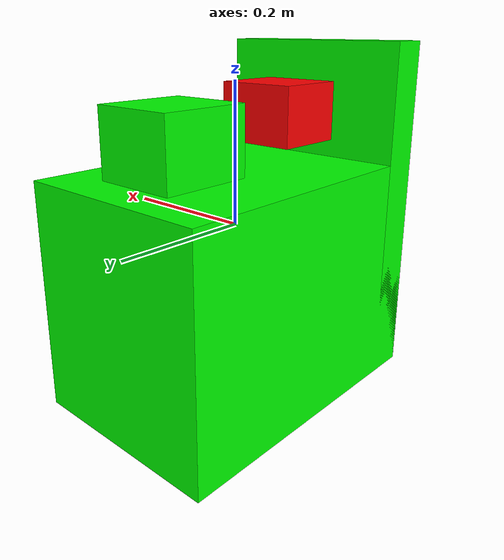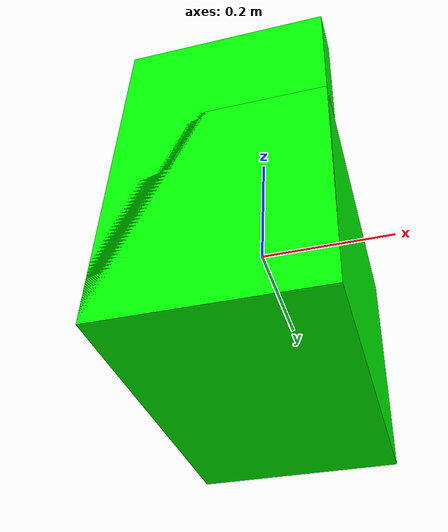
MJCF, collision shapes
<mujoco model="coffee_machine_8">
  <compiler autolimits="true" boundmass="0.01" angle="radian"/>
  <default>
    <default class="/">
      <default class="__VISUAL_MJT__">
        <geom contype="0" conaffinity="0" group="0"/>
      </default>
      <default class="__STRUCTURAL_MJT__">
        <geom contype="8" conaffinity="15" group="4" friction="0.90000000000000002 0.90000000000000002 0.001" solref="0.025000000000000001 1" solimp="0.998 0.998 0.001"/>
      </default>
      <default class="__DYNAMIC_MJT__">
        <geom contype="1" conaffinity="15" group="4" friction="0.90000000000000002 0.90000000000000002 0.001" solref="0.025000000000000001 1" solimp="0.998 0.998 0.001"/>
      </default>
    </default>
  </default>
  <asset>
    <material name="material_coffee_machine_backup_mat" class="/" specular="0.5" shininess="0.5" rgba="0.5 0.5 0.5 1"/>
    <material name="material_Coffee_Machine_Readout_Mat_Off" class="/" specular="0.5" shininess="0.5" rgba="0 0 0 1"/>
    <texture name="Coffee_Machine_Decal_Mat" type="2d" file="Coffee_Machine_Decal_AlbedoTransparency.png"/>
    <material name="material_Coffee_Machine_Decal_Mat" class="/" texture="Coffee_Machine_Decal_Mat" specular="0.5" shininess="0.5" rgba="1 1 1 1"/>
    <texture name="Coffee_Machine_Metal_Mat" type="2d" file="MetalBumpy_AlbedoTransparency.png"/>
    <material name="material_Coffee_Machine_Metal_Mat" class="/" texture="Coffee_Machine_Metal_Mat" specular="0.5" shininess="0.5" rgba="0.66176469999999998 0.66176469999999998 0.66176469999999998 1"/>
    <texture name="Coffee_Machine_Secondary3_Color_Mat" type="2d" file="BrushedIron_AlbedoTransparency.png"/>
    <material name="material_Coffee_Machine_Secondary3_Color_Mat" class="/" texture="Coffee_Machine_Secondary3_Color_Mat" specular="0.5" shininess="0.5" rgba="0.2573529 0.2573529 0.2573529 1"/>
    <texture name="Coffee_Machine_Primary3_Color_Mat" type="2d" file="BumpyPlastic_Albedo.png"/>
    <material name="material_Coffee_Machine_Primary3_Color_Mat" class="/" texture="Coffee_Machine_Primary3_Color_Mat" specular="0.5" shininess="0.5" rgba="0.31617650000000003 0.030222740000000001 0.030222740000000001 1"/>
    <mesh name="coffee_machine_8_coffee_machine_8_0" class="/" file="coffee_machine_8_coffee_machine_8/coffee_machine_8_coffee_machine_8_0.obj" scale="1 1 1"/>
    <mesh name="coffee_machine_8_coffee_machine_8_1" class="/" file="coffee_machine_8_coffee_machine_8/coffee_machine_8_coffee_machine_8_1.obj" scale="1 1 1"/>
    <mesh name="coffee_machine_8_coffee_machine_8_2" class="/" file="coffee_machine_8_coffee_machine_8/coffee_machine_8_coffee_machine_8_2.obj" scale="1 1 1"/>
    <mesh name="coffee_machine_8_coffee_machine_8_3" class="/" file="coffee_machine_8_coffee_machine_8/coffee_machine_8_coffee_machine_8_3.obj" scale="1 1 1"/>
    <mesh name="coffee_machine_8_coffee_machine_8_4" class="/" file="coffee_machine_8_coffee_machine_8/coffee_machine_8_coffee_machine_8_4.obj" scale="1 1 1"/>
    <mesh name="coffee_machine_8_coffee_machine_8_5" class="/" file="coffee_machine_8_coffee_machine_8/coffee_machine_8_coffee_machine_8_5.obj" scale="1 1 1"/>
  </asset>
  <worldbody>
    <body name="coffee_machine_8">
      <joint name="coffee_machine_8_free" class="/" type="free" pos="0 0 0" axis="0 0 1" stiffness="0" range="0 0" armature="0" damping="0.10000000000000001" frictionloss="0"/>
      <body name="coffee_machine_8_coffee_machine_8" pos="-0 -0.22181000000000001 -0.090279999999999999" quat="1 0 0 0">
        <geom name="coffee_machine_8_coffee_machine_8_0" class="__VISUAL_MJT__" type="mesh" material="material_coffee_machine_backup_mat" shellinertia="true" mesh="coffee_machine_8_coffee_machine_8_0"/>
        <geom name="coffee_machine_8_coffee_machine_8_1" class="__VISUAL_MJT__" type="mesh" material="material_Coffee_Machine_Readout_Mat_Off" shellinertia="false" mesh="coffee_machine_8_coffee_machine_8_1"/>
        <geom name="coffee_machine_8_coffee_machine_8_2" class="__VISUAL_MJT__" type="mesh" material="material_Coffee_Machine_Decal_Mat" shellinertia="false" mesh="coffee_machine_8_coffee_machine_8_2"/>
        <geom name="coffee_machine_8_coffee_machine_8_3" class="__VISUAL_MJT__" type="mesh" material="material_Coffee_Machine_Metal_Mat" shellinertia="false" mesh="coffee_machine_8_coffee_machine_8_3"/>
        <geom name="coffee_machine_8_coffee_machine_8_4" class="__VISUAL_MJT__" type="mesh" material="material_Coffee_Machine_Secondary3_Color_Mat" shellinertia="false" mesh="coffee_machine_8_coffee_machine_8_4"/>
        <geom name="coffee_machine_8_coffee_machine_8_5" class="__VISUAL_MJT__" type="mesh" material="material_Coffee_Machine_Primary3_Color_Mat" shellinertia="false" mesh="coffee_machine_8_coffee_machine_8_5"/>
        <site name="coffee_machine_8_Receptacle_0" class="/" type="box" rgba="1 0 0 1" size="0.060195311903953552 0.053857535123825073 0.043046452105045319" pos="0.015300000086426735 0.1108575314283371 0.23800000548362732" quat="1 0 0 0"/>
        <geom name="coffee_machine_8_PrimitiveCollider_0" class="__DYNAMIC_MJT__" type="box" size="0.14665767550468445 0.22180637717247009 0.16382844746112823" rgba="0 1 0 1" pos="-0 0.22180637717247009 0.0056261271238327026" quat="1 0 0 0"/>
        <geom name="coffee_machine_8_PrimitiveCollider_1" class="__DYNAMIC_MJT__" type="box" size="0.14665767550468445 0.028591066598892212 0.24848134815692902" rgba="0 1 0 1" pos="-0 0.028591066598892212 0.090279027819633484" quat="1 0 0 0"/>
        <geom name="coffee_machine_8_PrimitiveCollider_2" class="__DYNAMIC_MJT__" type="box" size="0.062035173177719116 0.067008763551712036 0.057733058929443359" rgba="0 1 0 1" pos="0.018230050802230835 0.31806400418281555 0.20865917205810547" quat="1 0 0 0"/>
      </body>
    </body>
  </worldbody>
</mujoco>
